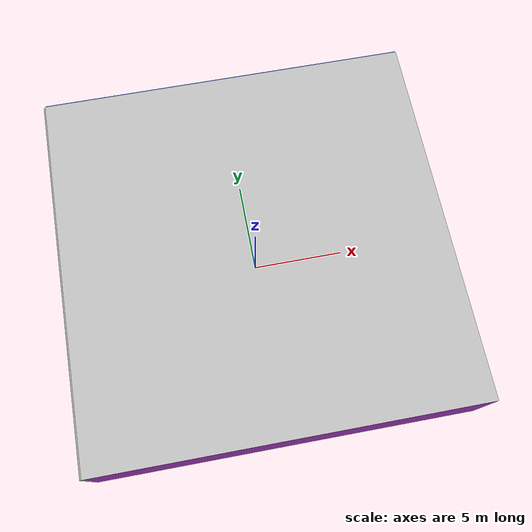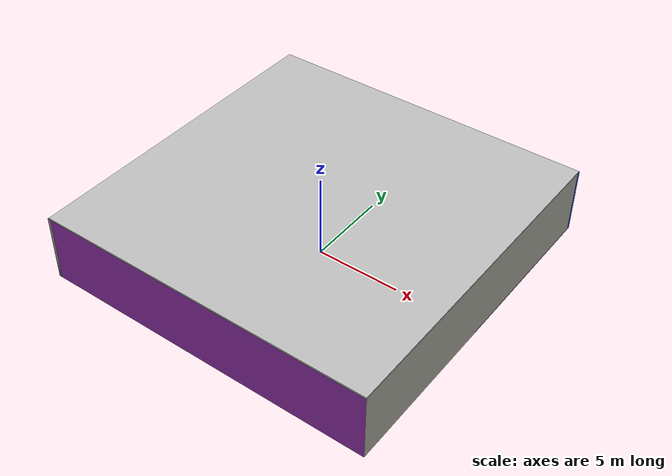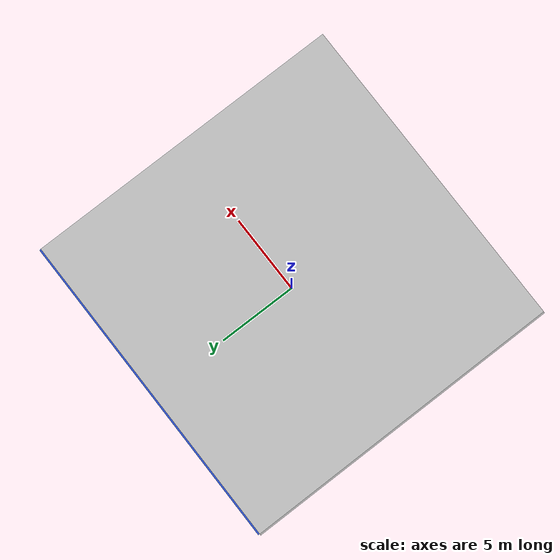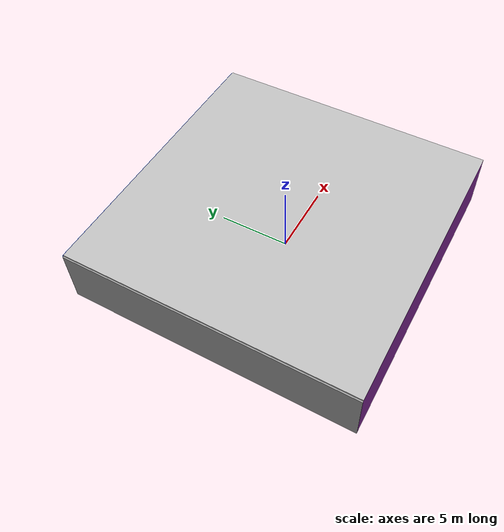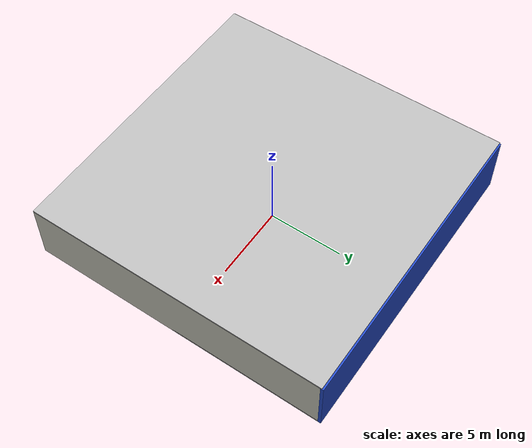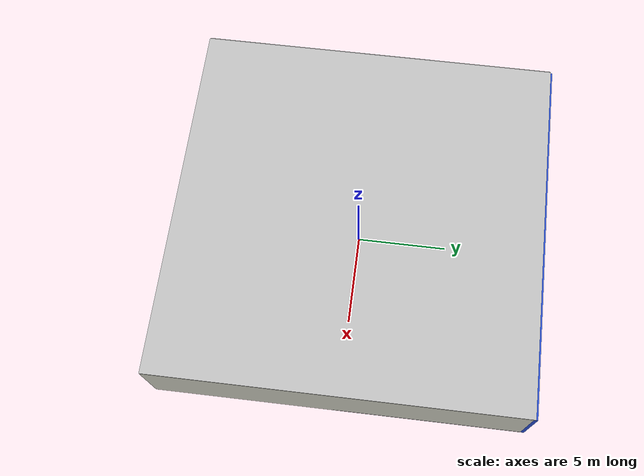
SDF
<sdf version="1.4">
 <world name="default">
  <physics type="ode">
   <max_step_size>0.001</max_step_size>
   <real_time_factor>1</real_time_factor>
   <real_time_update_rate>1000</real_time_update_rate>
   <gravity>0 0 -9.8</gravity>
  </physics>
  <scene><ambient>0.4 0.4 0.4 1</ambient><background>0.7 0.7 0.7 1</background><shadows>1</shadows></scene>
  <model name="Surrounding">
   <static>1</static>
   <link name="Ceiling">
    <collision name="Ceiling_Collision"><geometry><box><size>20 20 0.1</size></box></geometry></collision>
    <visual name="Ceiling_Visual">
     <geometry><box><size>20 20 0.1</size></box></geometry>
     <material>
      <script><uri>file://media/materials/scripts/gazebo.material</uri><name>Gazebo/Pioneer2Body</name></script>
     </material>
    </visual>
    <pose>0 0 4.05 0 0 0</pose>
   </link>
   <link name="Wall_South">
    <collision name="Wall_South_Collision">
     <geometry><box><size>20 0 4</size></box></geometry>
     <pose>0 0 2 0 -0 0</pose>
    </collision>
    <visual name="Wall_South_Visual">
     <pose>0 0 2 0 -0 0</pose>
     <geometry><box><size>20 0 4</size></box></geometry>
     <material>
      <script><uri>file://media/materials/scripts/gazebo.material</uri><name>Gazebo/PurpleGlow</name></script>
     </material>
    </visual>
    <velocity_decay><linear>0</linear><angular>0</angular></velocity_decay>
    <pose>0 -10 0 0 -0 0</pose>
   </link>
   <link name="Wall_East">
    <collision name="Wall_21_Collision">
     <geometry><box><size>20 0 4</size></box></geometry>
     <pose>0 0 2 0 -0 0</pose>
    </collision>
    <visual name="Wall_21_Visual">
     <pose>0 0 2 0 -0 0</pose>
     <geometry><box><size>20 0 4</size></box></geometry>
     <material>
      <script><uri>file://media/materials/scripts/gazebo.material</uri><name>Gazebo/PaintedWall</name></script>
     </material>
    </visual>
    <velocity_decay><linear>0</linear><angular>0</angular></velocity_decay>
    <pose>10 0 0 0 -0 1.5708</pose>
   </link>
   <link name="Wall_North">
    <collision name="Wall_22_Collision">
     <geometry><box><size>20 0.2 4</size></box></geometry>
     <pose>0 0 2 0 -0 0</pose>
    </collision>
    <visual name="Wall_22_Visual">
     <pose>0 0 2 0 -0 0</pose>
     <geometry><box><size>20 0.2 4</size></box></geometry>
     <material>
      <script><uri>file://media/materials/scripts/gazebo.material</uri><name>Gazebo/BlueGlow</name></script>
     </material>
    </visual>
    <velocity_decay><linear>0</linear><angular>0</angular></velocity_decay>
    <pose>0 10 0 0 -0 0</pose>
   </link>
   <link name="Wall_West">
    <collision name="Wall_23_Collision">
     <geometry><box><size>20 0.2 4</size></box></geometry>
     <pose>0 0 2 0 -0 0</pose>
    </collision>
    <visual name="Wall_23_Visual">
     <pose>0 0 2 0 -0 0</pose>
     <geometry><box><size>20 0.2 4</size></box></geometry>
     <material>
      <script><uri>file://media/materials/scripts/gazebo.material</uri><name>Gazebo/Grey</name></script>
     </material>
    </visual>
    <velocity_decay><linear>0</linear><angular>0</angular></velocity_decay>
    <pose>-10 0 0 0 0 -1.5708</pose>
   </link>
   <link name="Ground_link">
    <collision name="collision">
     <pose>0 0 .05 0 -0 0</pose>
     <geometry><box><size>20 20 0.1</size></box></geometry>
    </collision>
    <visual name="visual">
     <pose>0 0 .05 0 -0 0</pose>
     <geometry><box><size>20 20 0.1</size></box></geometry>
     <material>
      <script><uri>file://media/materials/scripts/gazebo.material</uri><name>Gazebo/Grey</name></script>
     </material>
    </visual>
   </link>
   <static>1</static>
  </model>
  <spherical_coordinates>
   <surface_model>EARTH_WGS84</surface_model>
   <latitude_deg>0</latitude_deg>
   <longitude_deg>0</longitude_deg>
   <elevation>0</elevation>
   <heading_deg>0</heading_deg>
  </spherical_coordinates>
  <light name="lightball_0" type="diffuse">
   <diffuse>0.8 0.8 0.8 1</diffuse>
   <specular>0.2 0.2 0.2 1</specular>
   <attenuation>
    <range>100</range>
    <constant>0.7</constant>
    <linear>0.01</linear>
    <quadratic>0.001</quadratic>
   </attenuation>
   <direction>-0.5 0.1 -0.9</direction>
   <pose>6.91962902886 -8.20442442888 2.47563612516 0 0 0</pose>
  </light>
  <light name="lightball_1" type="diffuse">
   <diffuse>0.8 0.8 0.8 1</diffuse>
   <specular>0.2 0.2 0.2 1</specular>
   <attenuation>
    <range>100</range>
    <constant>0.7</constant>
    <linear>0.01</linear>
    <quadratic>0.001</quadratic>
   </attenuation>
   <direction>-0.5 0.1 -0.9</direction>
   <pose>5.7860556801 0.552980003133 2.34315054137 0 0 0</pose>
  </light>
  <light name="lightball_2" type="diffuse">
   <diffuse>0.8 0.8 0.8 1</diffuse>
   <specular>0.2 0.2 0.2 1</specular>
   <attenuation>
    <range>100</range>
    <constant>0.7</constant>
    <linear>0.01</linear>
    <quadratic>0.001</quadratic>
   </attenuation>
   <direction>-0.5 0.1 -0.9</direction>
   <pose>-6.1777599916 -2.58234808606 2.38836251521 0 0 0</pose>
  </light>
  <light name="lightball_3" type="diffuse">
   <diffuse>0.8 0.8 0.8 1</diffuse>
   <specular>0.2 0.2 0.2 1</specular>
   <attenuation>
    <range>100</range>
    <constant>0.7</constant>
    <linear>0.01</linear>
    <quadratic>0.001</quadratic>
   </attenuation>
   <direction>-0.5 0.1 -0.9</direction>
   <pose>-0.019759912836 0.836240547589 0.720025028218 0 0 0</pose>
  </light>
  <light name="lightball_4" type="diffuse">
   <diffuse>0.8 0.8 0.8 1</diffuse>
   <specular>0.2 0.2 0.2 1</specular>
   <attenuation>
    <range>100</range>
    <constant>0.7</constant>
    <linear>0.01</linear>
    <quadratic>0.001</quadratic>
   </attenuation>
   <direction>-0.5 0.1 -0.9</direction>
   <pose>-4.87160373366 -0.556506259555 3.32378715028 0 0 0</pose>
  </light>
  <light name="lightball_5" type="diffuse">
   <diffuse>0.8 0.8 0.8 1</diffuse>
   <specular>0.2 0.2 0.2 1</specular>
   <attenuation>
    <range>100</range>
    <constant>0.7</constant>
    <linear>0.01</linear>
    <quadratic>0.001</quadratic>
   </attenuation>
   <direction>-0.5 0.1 -0.9</direction>
   <pose>-5.29277000524 6.74966401423 1.67535521376 0 0 0</pose>
  </light>
  <light name="lightball_6" type="diffuse">
   <diffuse>0.8 0.8 0.8 1</diffuse>
   <specular>0.2 0.2 0.2 1</specular>
   <attenuation>
    <range>100</range>
    <constant>0.7</constant>
    <linear>0.01</linear>
    <quadratic>0.001</quadratic>
   </attenuation>
   <direction>-0.5 0.1 -0.9</direction>
   <pose>0.0401753298621 -6.0537066126 1.50329768386 0 0 0</pose>
  </light>
  <light name="lightball_7" type="diffuse">
   <diffuse>0.8 0.8 0.8 1</diffuse>
   <specular>0.2 0.2 0.2 1</specular>
   <attenuation>
    <range>100</range>
    <constant>0.7</constant>
    <linear>0.01</linear>
    <quadratic>0.001</quadratic>
   </attenuation>
   <direction>-0.5 0.1 -0.9</direction>
   <pose>7.30220673031 2.10119523907 2.72515744969 0 0 0</pose>
  </light>
  <include>
   <uri>model://construction_cone</uri>
   <pose>-3.92364709859 -6.68411992697 0 0 0 2.15620732208</pose>
  </include>
  <include>
   <uri>model://construction_cone</uri>
   <pose>-3.76058772738 0.705189628659 0 0 0 2.68186348591</pose>
  </include>
  <include>
   <uri>model://robocup_3Dsim_goal</uri>
   <pose>3.54868150548 -1.63249299889 0 0 0 1.1351448513</pose>
  </include>
 </world>
</sdf>

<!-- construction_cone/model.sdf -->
<sdf version="1.5">
  <model name="Construction Cone">
    <link name="link">
      <collision name="collision">
        <geometry>
          <mesh>
            <scale>10 10 10</scale>
            <uri>file://isr-testbed/construction_cone/meshes/construction_cone.dae</uri>
          </mesh>
        </geometry>
      </collision>
      <visual name="visual">
        <geometry>
          <mesh>
            <scale>10 10 10</scale>
            <uri>file://isr-testbed/construction_cone/meshes/construction_cone.dae</uri>
          </mesh>
        </geometry>
      </visual>
    </link>
  </model>
</sdf>

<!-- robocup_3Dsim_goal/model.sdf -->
<sdf version="1.5">
  <model name="robocup_3d_goal">
    <static>true</static>
    <link name="left_post">
      <pose>0 1.05 0.45 0 0 0</pose>
      <collision name="collision">
        <geometry>
          <cylinder>
            <radius>0.05</radius>
            <length>0.9</length>
          </cylinder>
        </geometry>
      </collision>
      <visual name="visual">
        <geometry>
          <cylinder>
            <radius>0.05</radius>
            <length>0.9</length>
          </cylinder>
        </geometry>
        <material>
          <script>
            <uri>file://media/materials/scripts/gazebo.material</uri>
            <name>Gazebo/ZincYellow</name>
          </script>
        </material>
      </visual>
    </link>
    <link name="left_support_horiz_lower">
      <pose>0.30 1.05 0.01 0 0 0</pose>
      <collision name="collision">
        <geometry>
          <box>
            <size>0.50 0.02 0.02</size>
          </box>
        </geometry>
      </collision>
      <visual name="visual">
        <geometry>
          <box>
            <size>0.50 0.02 0.02</size>
          </box>
        </geometry>
        <material>
          <script>
            <uri>file://media/materials/scripts/gazebo.material</uri>
            <name>Gazebo/White</name>
          </script>
        </material>
      </visual>
    </link>
    <link name="left_support_horiz_upper">
      <pose>0.30 1.05 0.79 0 0 0</pose>
      <collision name="collision">
        <geometry>
          <box>
            <size>0.50 0.02 0.02</size>
          </box>
        </geometry>
      </collision>
      <visual name="visual">
        <geometry>
          <box>
            <size>0.50 0.02 0.02</size>
          </box>
        </geometry>
        <material>
          <script>
            <uri>file://media/materials/scripts/gazebo.material</uri>
            <name>Gazebo/White</name>
          </script>
        </material>
      </visual>
    </link>
    <link name="left_support_vertical">
      <pose>0.56 1.05 0.4 0 1.5708 0</pose>
      <collision name="collision">
        <geometry>
          <box>
            <size>0.80 0.02 0.02</size>
          </box>
        </geometry>
      </collision>
      <visual name="visual">
        <geometry>
          <box>
            <size>0.80 0.02 0.02</size>
          </box>
        </geometry>
        <material>
          <script>
            <uri>file://media/materials/scripts/gazebo.material</uri>
            <name>Gazebo/White</name>
          </script>
        </material>
      </visual>
    </link>
    <link name="right_support_horiz_lower">
      <pose>0.30 -1.05 0.01 0 0 0</pose>
      <collision name="collision">
        <geometry>
          <box>
            <size>0.50 0.02 0.02</size>
          </box>
        </geometry>
      </collision>
      <visual name="visual">
        <geometry>
          <box>
            <size>0.50 0.02 0.02</size>
          </box>
        </geometry>
        <material>
          <script>
            <uri>file://media/materials/scripts/gazebo.material</uri>
            <name>Gazebo/White</name>
          </script>
        </material>
      </visual>
    </link>
    <link name="right_support_horiz_upper">
      <pose>0.30 -1.05 0.79 0 0 0</pose>
      <collision name="collision">
        <geometry>
          <box>
            <size>0.50 0.02 0.02</size>
          </box>
        </geometry>
      </collision>
      <visual name="visual">
        <geometry>
          <box>
            <size>0.50 0.02 0.02</size>
          </box>
        </geometry>
        <material>
          <script>
            <uri>file://media/materials/scripts/gazebo.material</uri>
            <name>Gazebo/White</name>
          </script>
        </material>
      </visual>
    </link>
    <link name="right_support_vertical">
      <pose>0.56 -1.05 0.4 0 1.5708 0</pose>
      <collision name="collision">
        <geometry>
          <box>
            <size>0.80 0.02 0.02</size>
          </box>
        </geometry>
      </collision>
      <visual name="visual">
        <geometry>
          <box>
            <size>0.80 0.02 0.02</size>
          </box>
        </geometry>
        <material>
          <script>
            <uri>file://media/materials/scripts/gazebo.material</uri>
            <name>Gazebo/White</name>
          </script>
        </material>
      </visual>
    </link>
    <link name="center_support_horiz_lower">
      <pose>0.56 0 0.01 0 1.5708 0</pose>
      <collision name="collision">
        <geometry>
          <box>
            <size>0.02 2.08 0.02</size>
          </box>
        </geometry>
      </collision>
      <visual name="visual">
        <geometry>
          <box>
            <size>0.02 2.08 0.02</size>
          </box>
        </geometry>
        <material>
          <script>
            <uri>file://media/materials/scripts/gazebo.material</uri>
            <name>Gazebo/White</name>
          </script>
        </material>
      </visual>
    </link>
    <link name="center_support_horiz_upper">
      <pose>0.56 0 0.79 0 1.5708 0</pose>
      <collision name="collision">
        <geometry>
          <box>
            <size>0.02 2.08 0.02</size>
          </box>
        </geometry>
      </collision>
      <visual name="visual">
        <geometry>
          <box>
            <size>0.02 2.08 0.02</size>
          </box>
        </geometry>
        <material>
          <script>
            <uri>file://media/materials/scripts/gazebo.material</uri>
            <name>Gazebo/White</name>
          </script>
        </material>
      </visual>
    </link>
    <link name="right_post">
      <pose>0 -1.05 0.45 0 0 0</pose>
      <collision name="collision">
        <geometry>
          <cylinder>
            <radius>0.05</radius>
            <length>0.9</length>
          </cylinder>
        </geometry>
      </collision>
      <visual name="visual">
        <geometry>
          <cylinder>
            <radius>0.05</radius>
            <length>0.9</length>
          </cylinder>
        </geometry>
        <material>
          <script>
            <uri>file://media/materials/scripts/gazebo.material</uri>
            <name>Gazebo/ZincYellow</name>
          </script>
        </material>
      </visual>
    </link>
    <link name="crossbar">
      <pose>0 0 0.85 1.57 1.57 0</pose>
      <collision name="collision">
        <geometry>
          <cylinder>
            <radius>0.05</radius>
            <length>2.0</length>
          </cylinder>
        </geometry>
      </collision>
      <visual name="visual">
        <geometry>
          <cylinder>
            <radius>0.05</radius>
            <length>2.0</length>
          </cylinder>
        </geometry>
        <material>
          <script>
            <uri>file://media/materials/scripts/gazebo.material</uri>
            <name>Gazebo/ZincYellow</name>
          </script>
        </material>
      </visual>
    </link>
    <link name="center_net">
      <pose>0.56 0 0.40 0 0 0</pose>
      <collision name="collision">
        <geometry>
          <box>
            <size>0.01 2.1 0.80</size>
          </box>
        </geometry>
      </collision>
      <visual name="visual">
        <geometry>
          <box>
            <size>0.01 2.1 0.80</size>
          </box>
        </geometry>
        <material>
          <script>
            <uri>model://../model_source/models/robocup09_spl_field/materials/scripts/</uri>
            <uri>model://../model_source/models/robocup09_spl_field/materials/textures/</uri>
            <name>RoboCup/Net</name>
          </script>
        </material>
      </visual>
    </link>
    <link name="left_net">
      <pose>0.30 1.05 0.40 0 0 0</pose>
      <collision name="collision">
        <geometry>
          <box>
            <size>0.50 0.01 0.76</size>
          </box>
        </geometry>
      </collision>
      <visual name="visual">
        <geometry>
          <box>
            <size>0.50 0.01 0.76</size>
          </box>
        </geometry>
        <material>
          <script>
            <uri>model://../model_source/models/robocup09_spl_field/materials/scripts/</uri>
            <uri>model://../model_source/models/robocup09_spl_field/materials/textures/</uri>
            <name>RoboCup/Net</name>
          </script>
        </material>
      </visual>
    </link>
    <link name="right_net">
      <pose>0.30 -1.05 0.40 0 0 0</pose>
      <collision name="collision">
        <geometry>
          <box>
            <size>0.50 0.01 0.76</size>
          </box>
        </geometry>
      </collision>
      <visual name="visual">
        <geometry>
          <box>
            <size>0.50 0.01 0.76</size>
          </box>
        </geometry>
        <material>
          <script>
            <uri>model://../model_source/models/robocup09_spl_field/materials/scripts/</uri>
            <uri>model://../model_source/models/robocup09_spl_field/materials/textures/</uri>
            <name>RoboCup/Net</name>
          </script>
        </material>
      </visual>
    </link>
  </model>
</sdf>
